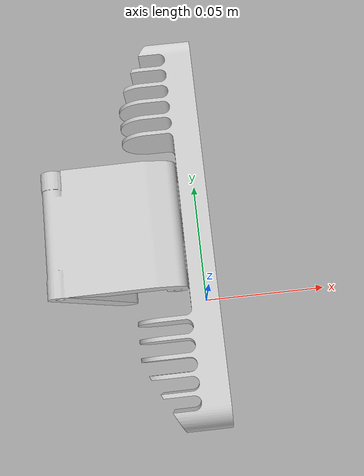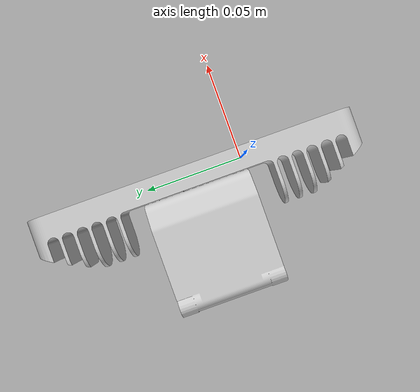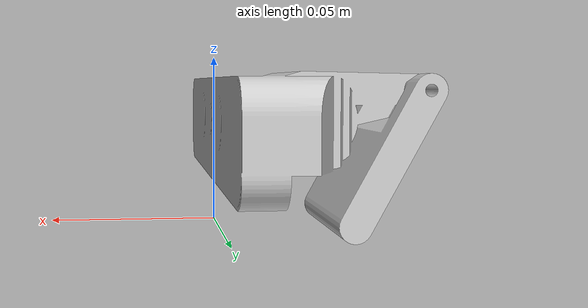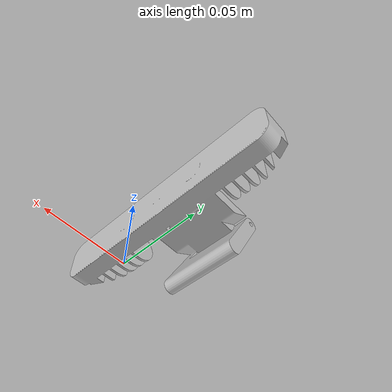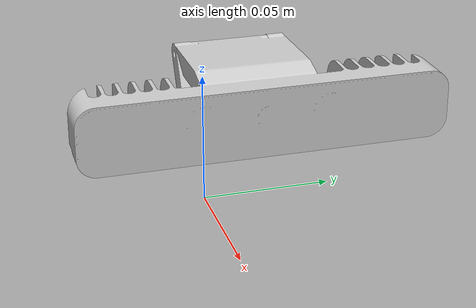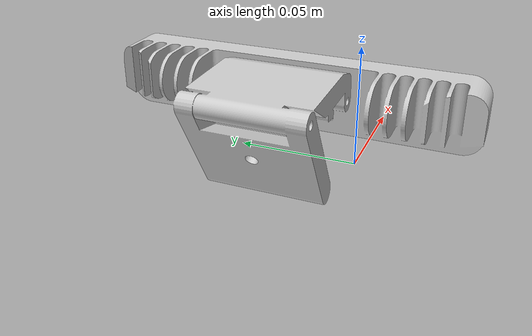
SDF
<?xml version="1.0" ?>
<sdf version="1.5">
	<model name="intel_realsense_sr300_sensor">
		<static>1</static>
		<pose>0 0 0.0327 0 0 0</pose>
		<link name="link">
			<inertial>
				<mass>0.1</mass>
			</inertial>
			<collision name="collision">
				<pose>-0.027 0.025 -0.01 0 0 0</pose>
				<geometry>
					<box>
						<size>0.0608 0.148 0.0454</size>
					</box>
				</geometry>
			</collision>
			<visual name="visual">
				<transparency>0</transparency>
				<geometry>
					<mesh>
						<uri>model://intel_realsense_sr300_sensor/meshes/intel_realsense_sr300_sensor.stl</uri>
					</mesh>
				</geometry>
				<material>
					<script>
						<name>SensorPlacementOptimization/LightGray</name>
						<uri>file://materials/sensor_placement_optimization.material</uri>
					</script>
				</material>
			</visual>
			<sensor name="sensor" type="depth">
				<update_rate>60</update_rate>
				<camera>
					<horizontal_fov>1.24791</horizontal_fov>
					<image>
						<width>640</width>
						<height>480</height>
						<format>B8G8R8</format>
					</image>
					<clip>
						<near>0.2</near>
						<far>1.5</far>
					</clip>
				</camera>
			</sensor>
		</link>
	</model>
</sdf>
